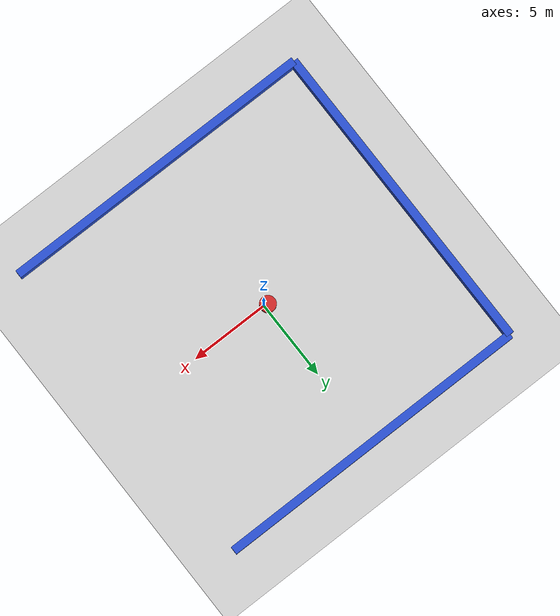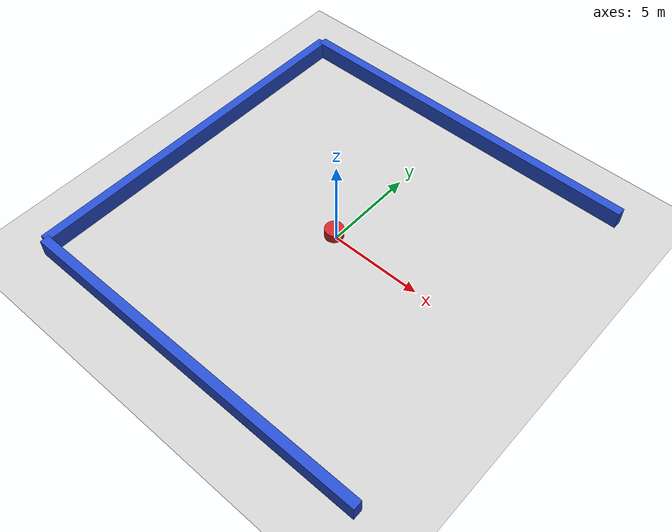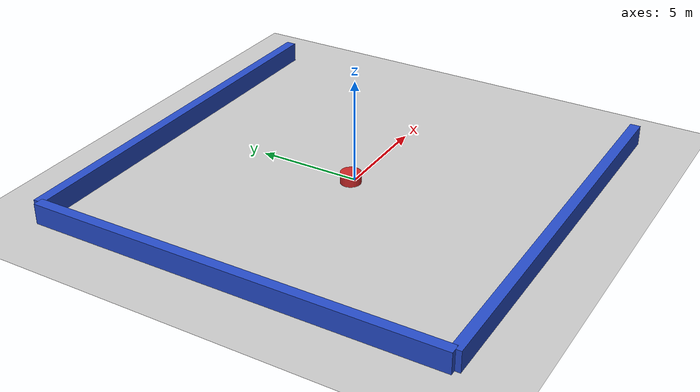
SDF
<?xml version="1.0" ?>
<sdf version="1.6">
   <world name="default">
    <model name="ground_plane">
      <static>1</static>
      <link name="link">
        <collision name="collision">
          <geometry><plane><normal>0 0 1</normal><size>100 100</size></plane></geometry>
          <surface><friction><ode><mu>100</mu><mu2>50</mu2></ode><torsional><ode/></torsional></friction><contact><ode/></contact></surface>
        </collision>
        <visual name="visual">
          <cast_shadows>0</cast_shadows>
          <geometry><plane><normal>0 0 1</normal><size>100 100</size></plane></geometry>
          <material><ambient>0.8 0.8 0.8 1</ambient><diffuse>0.8 0.8 0.8 1</diffuse><specular>0.01 0.01 0.01 1</specular></material>
        </visual>
      </link>
    </model>
    <light name="sun" type="directional">
      <cast_shadows>1</cast_shadows>
      <pose>0 0 10 0 0 0</pose>
      <diffuse>1 1 1 1</diffuse>
      <specular>0.1 0.1 0.1 1</specular>
      <attenuation><range>1000</range><constant>0.9</constant><linear>0.01</linear><quadratic>0.001</quadratic></attenuation>
      <direction>-0.5 0.5 -1</direction>
    </light>

    <model name='hardlibobs_42'>
      <static>1</static>
      <pose frame=''>-0.225000 0.075000 0.000000 0.000000 0.000000 0.000000</pose>
      <link name='link'>
        <inertial>
          <mass>1</mass>
          <inertia>
            <ixx>0.145833</ixx>
            <ixy>0</ixy>
            <ixz>0</ixz>
            <iyy>0.145833</iyy>
            <iyz>0</iyz>
            <izz>0.125</izz>
          </inertia>
        </inertial>
        <collision name='collision'>
           <geometry>
            <cylinder>
                <radius>0.5000</radius>
                 <length> 1 </length>
            </cylinder>
          </geometry>
           <surface>
            <contact>
              <ode/>
            </contact>
            <bounce/>
            <friction>
              <torsional>
                <ode/>
              </torsional>
              <ode/>
            </friction>
          </surface>
        </collision>
        <visual name='visual'>
           <geometry>
            <cylinder>
                <radius>0.5000</radius>
                 <length> 1 </length>
            </cylinder>
          </geometry>
          <material>
            <script>
              <name>Gazebo/Red</name>
              <uri>file://media/materials/scripts/gazebo.material</uri>
            </script>
          </material>
        </visual>
        <self_collide>0</self_collide>
        <kinematic>0</kinematic>
        <gravity>1</gravity>
      </link>
      <plugin name='hardlibobs_42' filename='hardlibobs_42.so'/>
    </model>

    <model name='hardlibobs_153'>
      <static>1</static>
      <pose frame=''>-0.225000 0.075000 0.000000 0.000000 0.000000 0.000000</pose>
      <link name='link'>
        <inertial>
          <mass>1</mass>
          <inertia>
            <ixx>0.145833</ixx>
            <ixy>0</ixy>
            <ixz>0</ixz>
            <iyy>0.145833</iyy>
            <iyz>0</iyz>
            <izz>0.125</izz>
          </inertia>
        </inertial>
        <collision name='collision'>
           <geometry>
            <cylinder>
                <radius>0.5000</radius>
                 <length> 1 </length>
            </cylinder>
          </geometry>
           <surface>
            <contact>
              <ode/>
            </contact>
            <bounce/>
            <friction>
              <torsional>
                <ode/>
              </torsional>
              <ode/>
            </friction>
          </surface>
        </collision>
        <visual name='visual'>
           <geometry>
            <cylinder>
                <radius>0.5000</radius>
                 <length> 1 </length>
            </cylinder>
          </geometry>
          <material>
            <script>
              <name>Gazebo/Red</name>
              <uri>file://media/materials/scripts/gazebo.material</uri>
            </script>
          </material>
        </visual>
        <self_collide>0</self_collide>
        <kinematic>0</kinematic>
        <gravity>1</gravity>
      </link>
      <plugin name='hardlibobs_153' filename='hardlibobs_153.so'/>
    </model>

    <model name='hardlibobs_0'>
      <static>1</static>
      <pose frame=''>-0.225000 0.075000 0.000000 0.000000 0.000000 0.000000</pose>
      <link name='link'>
        <inertial>
          <mass>1</mass>
          <inertia>
            <ixx>0.145833</ixx>
            <ixy>0</ixy>
            <ixz>0</ixz>
            <iyy>0.145833</iyy>
            <iyz>0</iyz>
            <izz>0.125</izz>
          </inertia>
        </inertial>
        <collision name='collision'>
           <geometry>
            <cylinder>
                <radius>0.5000</radius>
                 <length> 1 </length>
            </cylinder>
          </geometry>
           <surface>
            <contact>
              <ode/>
            </contact>
            <bounce/>
            <friction>
              <torsional>
                <ode/>
              </torsional>
              <ode/>
            </friction>
          </surface>
        </collision>
        <visual name='visual'>
           <geometry>
            <cylinder>
                <radius>0.5000</radius>
                 <length> 1 </length>
            </cylinder>
          </geometry>
          <material>
            <script>
              <name>Gazebo/Red</name>
              <uri>file://media/materials/scripts/gazebo.material</uri>
            </script>
          </material>
        </visual>
        <self_collide>0</self_collide>
        <kinematic>0</kinematic>
        <gravity>1</gravity>
      </link>
      <plugin name='hardlibobs_0' filename='hardlibobs_0.so'/>
    </model>

    <model name='hardlibobs_56'>
      <static>1</static>
      <pose frame=''>-0.225000 0.075000 0.000000 0.000000 0.000000 0.000000</pose>
      <link name='link'>
        <inertial>
          <mass>1</mass>
          <inertia>
            <ixx>0.145833</ixx>
            <ixy>0</ixy>
            <ixz>0</ixz>
            <iyy>0.145833</iyy>
            <iyz>0</iyz>
            <izz>0.125</izz>
          </inertia>
        </inertial>
        <collision name='collision'>
           <geometry>
            <cylinder>
                <radius>0.5000</radius>
                 <length> 1 </length>
            </cylinder>
          </geometry>
           <surface>
            <contact>
              <ode/>
            </contact>
            <bounce/>
            <friction>
              <torsional>
                <ode/>
              </torsional>
              <ode/>
            </friction>
          </surface>
        </collision>
        <visual name='visual'>
           <geometry>
            <cylinder>
                <radius>0.5000</radius>
                 <length> 1 </length>
            </cylinder>
          </geometry>
          <material>
            <script>
              <name>Gazebo/Red</name>
              <uri>file://media/materials/scripts/gazebo.material</uri>
            </script>
          </material>
        </visual>
        <self_collide>0</self_collide>
        <kinematic>0</kinematic>
        <gravity>1</gravity>
      </link>
      <plugin name='hardlibobs_56' filename='hardlibobs_56.so'/>
    </model>

    <model name='hardlibobs_183'>
      <static>1</static>
      <pose frame=''>-0.225000 0.075000 0.000000 0.000000 0.000000 0.000000</pose>
      <link name='link'>
        <inertial>
          <mass>1</mass>
          <inertia>
            <ixx>0.145833</ixx>
            <ixy>0</ixy>
            <ixz>0</ixz>
            <iyy>0.145833</iyy>
            <iyz>0</iyz>
            <izz>0.125</izz>
          </inertia>
        </inertial>
        <collision name='collision'>
           <geometry>
            <cylinder>
                <radius>0.5000</radius>
                 <length> 1 </length>
            </cylinder>
          </geometry>
           <surface>
            <contact>
              <ode/>
            </contact>
            <bounce/>
            <friction>
              <torsional>
                <ode/>
              </torsional>
              <ode/>
            </friction>
          </surface>
        </collision>
        <visual name='visual'>
           <geometry>
            <cylinder>
                <radius>0.5000</radius>
                 <length> 1 </length>
            </cylinder>
          </geometry>
          <material>
            <script>
              <name>Gazebo/Red</name>
              <uri>file://media/materials/scripts/gazebo.material</uri>
            </script>
          </material>
        </visual>
        <self_collide>0</self_collide>
        <kinematic>0</kinematic>
        <gravity>1</gravity>
      </link>
      <plugin name='hardlibobs_183' filename='hardlibobs_183.so'/>
    </model>

    <model name='hardlibobs_132'>
      <static>1</static>
      <pose frame=''>-0.225000 0.075000 0.000000 0.000000 0.000000 0.000000</pose>
      <link name='link'>
        <inertial>
          <mass>1</mass>
          <inertia>
            <ixx>0.145833</ixx>
            <ixy>0</ixy>
            <ixz>0</ixz>
            <iyy>0.145833</iyy>
            <iyz>0</iyz>
            <izz>0.125</izz>
          </inertia>
        </inertial>
        <collision name='collision'>
           <geometry>
            <cylinder>
                <radius>0.5000</radius>
                 <length> 1 </length>
            </cylinder>
          </geometry>
           <surface>
            <contact>
              <ode/>
            </contact>
            <bounce/>
            <friction>
              <torsional>
                <ode/>
              </torsional>
              <ode/>
            </friction>
          </surface>
        </collision>
        <visual name='visual'>
           <geometry>
            <cylinder>
                <radius>0.5000</radius>
                 <length> 1 </length>
            </cylinder>
          </geometry>
          <material>
            <script>
              <name>Gazebo/Red</name>
              <uri>file://media/materials/scripts/gazebo.material</uri>
            </script>
          </material>
        </visual>
        <self_collide>0</self_collide>
        <kinematic>0</kinematic>
        <gravity>1</gravity>
      </link>
      <plugin name='hardlibobs_132' filename='hardlibobs_132.so'/>
    </model>

    <model name='hardlibobs_175'>
      <static>1</static>
      <pose frame=''>-0.225000 0.075000 0.000000 0.000000 0.000000 0.000000</pose>
      <link name='link'>
        <inertial>
          <mass>1</mass>
          <inertia>
            <ixx>0.145833</ixx>
            <ixy>0</ixy>
            <ixz>0</ixz>
            <iyy>0.145833</iyy>
            <iyz>0</iyz>
            <izz>0.125</izz>
          </inertia>
        </inertial>
        <collision name='collision'>
           <geometry>
            <cylinder>
                <radius>0.5000</radius>
                 <length> 1 </length>
            </cylinder>
          </geometry>
           <surface>
            <contact>
              <ode/>
            </contact>
            <bounce/>
            <friction>
              <torsional>
                <ode/>
              </torsional>
              <ode/>
            </friction>
          </surface>
        </collision>
        <visual name='visual'>
           <geometry>
            <cylinder>
                <radius>0.5000</radius>
                 <length> 1 </length>
            </cylinder>
          </geometry>
          <material>
            <script>
              <name>Gazebo/Red</name>
              <uri>file://media/materials/scripts/gazebo.material</uri>
            </script>
          </material>
        </visual>
        <self_collide>0</self_collide>
        <kinematic>0</kinematic>
        <gravity>1</gravity>
      </link>
      <plugin name='hardlibobs_175' filename='hardlibobs_175.so'/>
    </model>

    <model name='hardlibobs_150'>
      <static>1</static>
      <pose frame=''>-0.225000 0.075000 0.000000 0.000000 0.000000 0.000000</pose>
      <link name='link'>
        <inertial>
          <mass>1</mass>
          <inertia>
            <ixx>0.145833</ixx>
            <ixy>0</ixy>
            <ixz>0</ixz>
            <iyy>0.145833</iyy>
            <iyz>0</iyz>
            <izz>0.125</izz>
          </inertia>
        </inertial>
        <collision name='collision'>
           <geometry>
            <cylinder>
                <radius>0.5000</radius>
                 <length> 1 </length>
            </cylinder>
          </geometry>
           <surface>
            <contact>
              <ode/>
            </contact>
            <bounce/>
            <friction>
              <torsional>
                <ode/>
              </torsional>
              <ode/>
            </friction>
          </surface>
        </collision>
        <visual name='visual'>
           <geometry>
            <cylinder>
                <radius>0.5000</radius>
                 <length> 1 </length>
            </cylinder>
          </geometry>
          <material>
            <script>
              <name>Gazebo/Red</name>
              <uri>file://media/materials/scripts/gazebo.material</uri>
            </script>
          </material>
        </visual>
        <self_collide>0</self_collide>
        <kinematic>0</kinematic>
        <gravity>1</gravity>
      </link>
      <plugin name='hardlibobs_150' filename='hardlibobs_150.so'/>
    </model>

    <model name='hardlibobs_145'>
      <static>1</static>
      <pose frame=''>-0.225000 0.075000 0.000000 0.000000 0.000000 0.000000</pose>
      <link name='link'>
        <inertial>
          <mass>1</mass>
          <inertia>
            <ixx>0.145833</ixx>
            <ixy>0</ixy>
            <ixz>0</ixz>
            <iyy>0.145833</iyy>
            <iyz>0</iyz>
            <izz>0.125</izz>
          </inertia>
        </inertial>
        <collision name='collision'>
           <geometry>
            <cylinder>
                <radius>0.5000</radius>
                 <length> 1 </length>
            </cylinder>
          </geometry>
           <surface>
            <contact>
              <ode/>
            </contact>
            <bounce/>
            <friction>
              <torsional>
                <ode/>
              </torsional>
              <ode/>
            </friction>
          </surface>
        </collision>
        <visual name='visual'>
           <geometry>
            <cylinder>
                <radius>0.5000</radius>
                 <length> 1 </length>
            </cylinder>
          </geometry>
          <material>
            <script>
              <name>Gazebo/Red</name>
              <uri>file://media/materials/scripts/gazebo.material</uri>
            </script>
          </material>
        </visual>
        <self_collide>0</self_collide>
        <kinematic>0</kinematic>
        <gravity>1</gravity>
      </link>
      <plugin name='hardlibobs_145' filename='hardlibobs_145.so'/>
    </model>

    <model name='hardlibobs_163'>
      <static>1</static>
      <pose frame=''>-0.225000 0.075000 0.000000 0.000000 0.000000 0.000000</pose>
      <link name='link'>
        <inertial>
          <mass>1</mass>
          <inertia>
            <ixx>0.145833</ixx>
            <ixy>0</ixy>
            <ixz>0</ixz>
            <iyy>0.145833</iyy>
            <iyz>0</iyz>
            <izz>0.125</izz>
          </inertia>
        </inertial>
        <collision name='collision'>
           <geometry>
            <cylinder>
                <radius>0.5000</radius>
                 <length> 1 </length>
            </cylinder>
          </geometry>
           <surface>
            <contact>
              <ode/>
            </contact>
            <bounce/>
            <friction>
              <torsional>
                <ode/>
              </torsional>
              <ode/>
            </friction>
          </surface>
        </collision>
        <visual name='visual'>
           <geometry>
            <cylinder>
                <radius>0.5000</radius>
                 <length> 1 </length>
            </cylinder>
          </geometry>
          <material>
            <script>
              <name>Gazebo/Red</name>
              <uri>file://media/materials/scripts/gazebo.material</uri>
            </script>
          </material>
        </visual>
        <self_collide>0</self_collide>
        <kinematic>0</kinematic>
        <gravity>1</gravity>
      </link>
      <plugin name='hardlibobs_163' filename='hardlibobs_163.so'/>
    </model>

    <model name='hardlibobs_180'>
      <static>1</static>
      <pose frame=''>-0.225000 0.075000 0.000000 0.000000 0.000000 0.000000</pose>
      <link name='link'>
        <inertial>
          <mass>1</mass>
          <inertia>
            <ixx>0.145833</ixx>
            <ixy>0</ixy>
            <ixz>0</ixz>
            <iyy>0.145833</iyy>
            <iyz>0</iyz>
            <izz>0.125</izz>
          </inertia>
        </inertial>
        <collision name='collision'>
           <geometry>
            <cylinder>
                <radius>0.5000</radius>
                 <length> 1 </length>
            </cylinder>
          </geometry>
           <surface>
            <contact>
              <ode/>
            </contact>
            <bounce/>
            <friction>
              <torsional>
                <ode/>
              </torsional>
              <ode/>
            </friction>
          </surface>
        </collision>
        <visual name='visual'>
           <geometry>
            <cylinder>
                <radius>0.5000</radius>
                 <length> 1 </length>
            </cylinder>
          </geometry>
          <material>
            <script>
              <name>Gazebo/Red</name>
              <uri>file://media/materials/scripts/gazebo.material</uri>
            </script>
          </material>
        </visual>
        <self_collide>0</self_collide>
        <kinematic>0</kinematic>
        <gravity>1</gravity>
      </link>
      <plugin name='hardlibobs_180' filename='hardlibobs_180.so'/>
    </model>

    <model name='hardlibobs_149'>
      <static>1</static>
      <pose frame=''>-0.225000 0.075000 0.000000 0.000000 0.000000 0.000000</pose>
      <link name='link'>
        <inertial>
          <mass>1</mass>
          <inertia>
            <ixx>0.145833</ixx>
            <ixy>0</ixy>
            <ixz>0</ixz>
            <iyy>0.145833</iyy>
            <iyz>0</iyz>
            <izz>0.125</izz>
          </inertia>
        </inertial>
        <collision name='collision'>
           <geometry>
            <cylinder>
                <radius>0.5000</radius>
                 <length> 1 </length>
            </cylinder>
          </geometry>
           <surface>
            <contact>
              <ode/>
            </contact>
            <bounce/>
            <friction>
              <torsional>
                <ode/>
              </torsional>
              <ode/>
            </friction>
          </surface>
        </collision>
        <visual name='visual'>
           <geometry>
            <cylinder>
                <radius>0.5000</radius>
                 <length> 1 </length>
            </cylinder>
          </geometry>
          <material>
            <script>
              <name>Gazebo/Red</name>
              <uri>file://media/materials/scripts/gazebo.material</uri>
            </script>
          </material>
        </visual>
        <self_collide>0</self_collide>
        <kinematic>0</kinematic>
        <gravity>1</gravity>
      </link>
      <plugin name='hardlibobs_149' filename='hardlibobs_149.so'/>
    </model>

    <model name='hardlibobs_152'>
      <static>1</static>
      <pose frame=''>-0.225000 0.075000 0.000000 0.000000 0.000000 0.000000</pose>
      <link name='link'>
        <inertial>
          <mass>1</mass>
          <inertia>
            <ixx>0.145833</ixx>
            <ixy>0</ixy>
            <ixz>0</ixz>
            <iyy>0.145833</iyy>
            <iyz>0</iyz>
            <izz>0.125</izz>
          </inertia>
        </inertial>
        <collision name='collision'>
           <geometry>
            <cylinder>
                <radius>0.5000</radius>
                 <length> 1 </length>
            </cylinder>
          </geometry>
           <surface>
            <contact>
              <ode/>
            </contact>
            <bounce/>
            <friction>
              <torsional>
                <ode/>
              </torsional>
              <ode/>
            </friction>
          </surface>
        </collision>
        <visual name='visual'>
           <geometry>
            <cylinder>
                <radius>0.5000</radius>
                 <length> 1 </length>
            </cylinder>
          </geometry>
          <material>
            <script>
              <name>Gazebo/Red</name>
              <uri>file://media/materials/scripts/gazebo.material</uri>
            </script>
          </material>
        </visual>
        <self_collide>0</self_collide>
        <kinematic>0</kinematic>
        <gravity>1</gravity>
      </link>
      <plugin name='hardlibobs_152' filename='hardlibobs_152.so'/>
    </model>

      <model name="back_wall">
      <static>1</static>\   <pose>-10 0 .5 0 0 0</pose>        <link name="box_link">

	<collision name='collision'>
            <geometry>
              <box>
                <size>.5 20 1</size>
              </box>
            </geometry>
           <surface>
            <contact>
              <ode/>
            </contact>
            <bounce/>
            <friction>
              <torsional>
                <ode/>
              </torsional>
              <ode/>
            </friction>
          </surface>
        </collision>

          <visual name="visual">
            <geometry>
              <box>
                <size>.5 20 1</size>
              </box>
            </geometry>
          <material>
                 <script>
                     <name>Gazebo/Blue</name>
                         <uri>file://media/materials/scripts/gazebo.material</uri>
                         </script>
                     </material>
          </visual>
        </link>
      </model>
      <model name="top_wall">
      <static>1</static>
       <pose>0 10 .5 0 0 0</pose>        <link name="box_link">

	<collision name='collision'>
           <geometry>
              <box>
                <size>20 .5 1</size>
              </box>
            </geometry>
           <surface>
            <contact>
              <ode/>
            </contact>
            <bounce/>
            <friction>
              <torsional>
                <ode/>
              </torsional>
              <ode/>
            </friction>
          </surface>
        </collision>
          <visual name="visual">
            <geometry>
              <box>
                <size>20 .5 1</size>
              </box>
            </geometry>
          <material>
                 <script>
                     <name>Gazebo/Blue</name>
                         <uri>file://media/materials/scripts/gazebo.material</uri>
                         </script>
                     </material>
          </visual>
        </link>
      </model>
      <model name="bottom_wall">
      <static>1</static>
       <pose>0 -10 .5 0 0 0</pose>        <link name="box_link">
	<collision name='collision'>
            <geometry>
              <box>
                <size>20 .5 1</size>
              </box>
            </geometry>
           <surface>
            <contact>
              <ode/>
            </contact>
            <bounce/>
            <friction>
              <torsional>
                <ode/>
              </torsional>
              <ode/>
            </friction>
          </surface>
        </collision>
          <visual name="visual">
            <geometry>
              <box>
                <size>20 .5 1</size>
              </box>
            </geometry>
          <material>
                 <script>
                     <name>Gazebo/Blue</name>
                         <uri>file://media/materials/scripts/gazebo.material</uri>
                         </script>
                     </material>
          </visual>
        </link>
      </model>
   </world>
</sdf>
